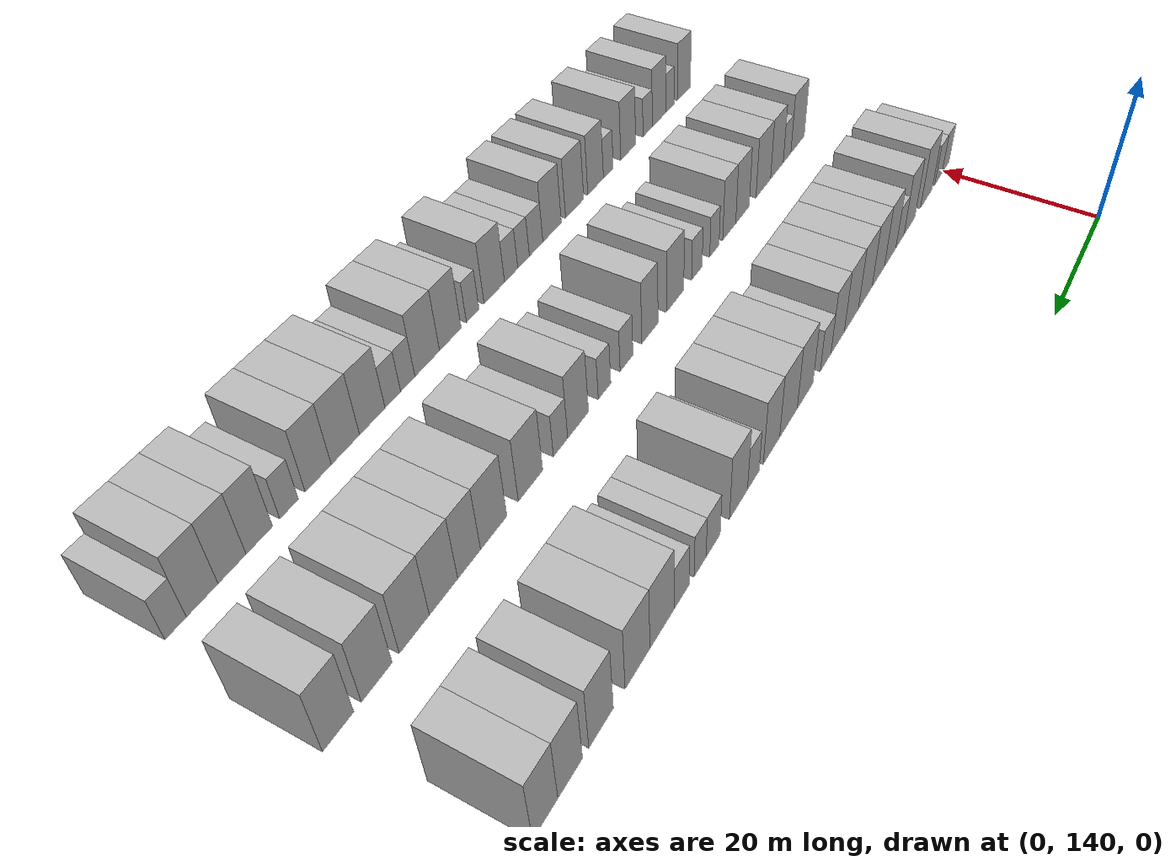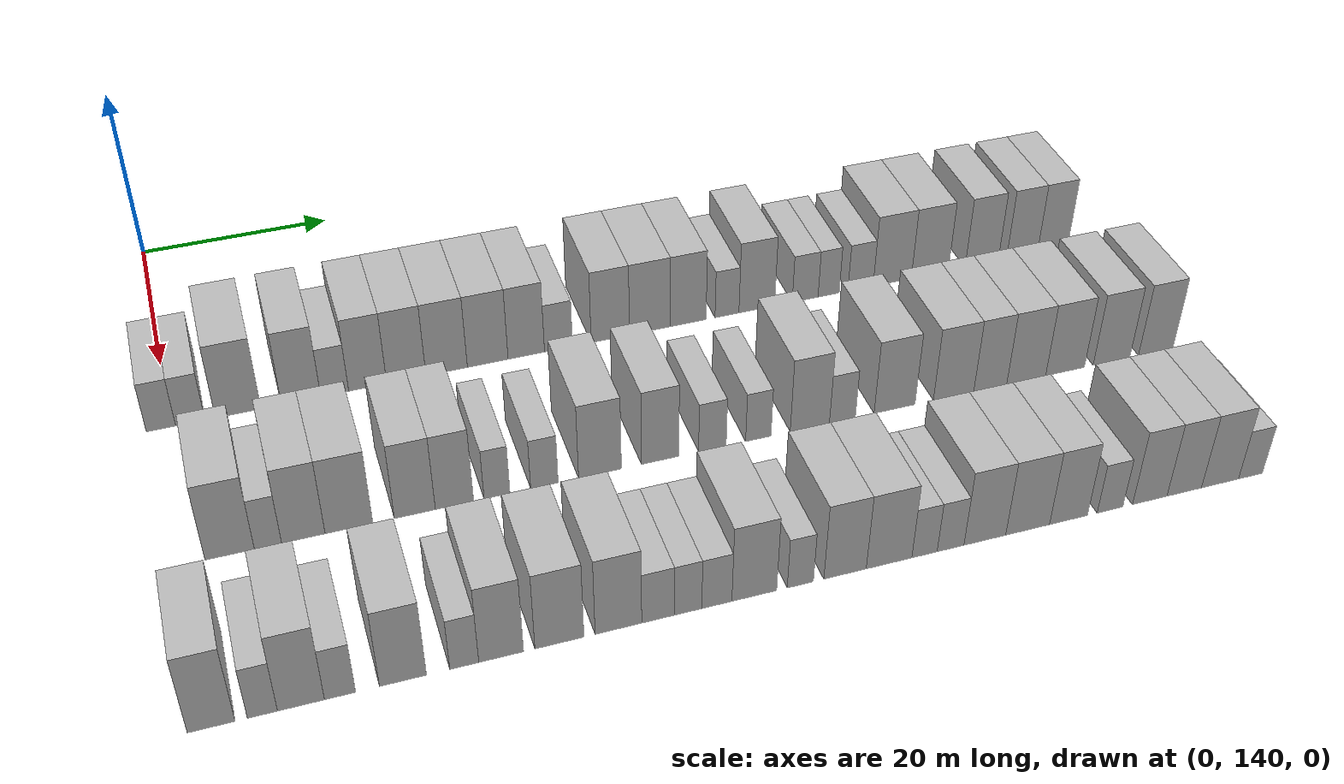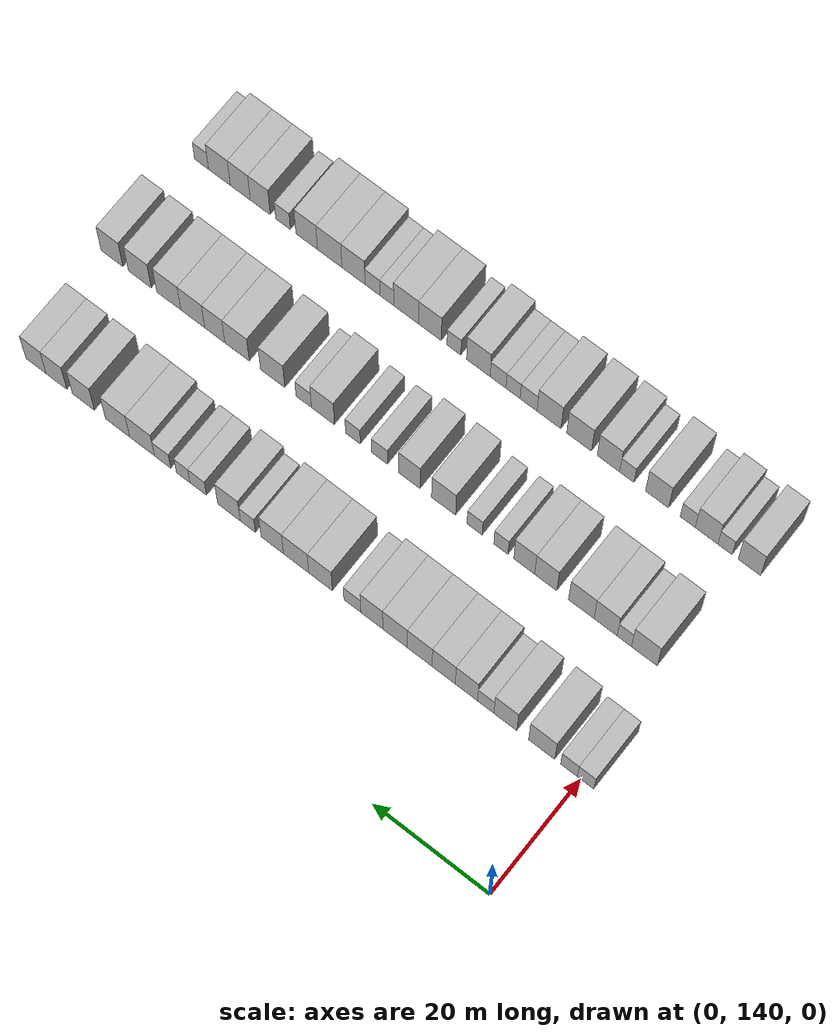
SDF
<sdf version="1.6">
 <world name="default">
  <model name="building_96">
   <static>1</static>
   <pose>25.0000 139.1685 0 0.000000 0.000000 0.000000</pose>
   <link name="link">
    <pose>0 0 3.00 0 0 0</pose>
    <collision name="collision"><geometry><box><size>10.0000 2.8080 6.0000</size></box></geometry></collision>
    <visual name="visual">
     <cast_shadows>0</cast_shadows>
     <geometry><box><size>10.0000 2.8080 6.0000</size></box></geometry>
     <material>
      <script>
       <uri>model://HANNAS_wall/materials/scripts</uri>
       <uri>model://HANNAS_wall/materials/textures</uri>
       <name>vrc/HANNAS_wall</name>
      </script>
     </material>
    </visual>
   </link>
  </model>
  <model name="building_97">
   <static>1</static>
   <pose>25.0000 141.9896 0 0.000000 0.000000 0.000000</pose>
   <link name="link">
    <pose>0 0 3.00 0 0 0</pose>
    <collision name="collision"><geometry><box><size>10.0000 2.8341 6.0000</size></box></geometry></collision>
    <visual name="visual">
     <cast_shadows>0</cast_shadows>
     <geometry><box><size>10.0000 2.8341 6.0000</size></box></geometry>
     <material>
      <script>
       <uri>model://HANNAS_wall/materials/scripts</uri>
       <uri>model://HANNAS_wall/materials/textures</uri>
       <name>vrc/HANNAS_wall</name>
      </script>
     </material>
    </visual>
   </link>
  </model>
  <model name="building_98">
   <static>1</static>
   <pose>25.0000 146.6358 0 0.000000 0.000000 0.000000</pose>
   <link name="link">
    <pose>0 0 4.50 0 0 0</pose>
    <collision name="collision"><geometry><box><size>10.0000 4.4584 9.0000</size></box></geometry></collision>
    <visual name="visual">
     <cast_shadows>0</cast_shadows>
     <geometry><box><size>10.0000 4.4584 9.0000</size></box></geometry>
     <material>
      <script>
       <uri>model://HANNAS_wall/materials/scripts</uri>
       <uri>model://HANNAS_wall/materials/textures</uri>
       <name>vrc/HANNAS_wall</name>
      </script>
     </material>
    </visual>
   </link>
  </model>
  <model name="building_99">
   <static>1</static>
   <pose>25.0000 152.8240 0 0.000000 0.000000 0.000000</pose>
   <link name="link">
    <pose>0 0 4.50 0 0 0</pose>
    <collision name="collision"><geometry><box><size>10.0000 3.9180 9.0000</size></box></geometry></collision>
    <visual name="visual">
     <cast_shadows>0</cast_shadows>
     <geometry><box><size>10.0000 3.9180 9.0000</size></box></geometry>
     <material>
      <script>
       <uri>model://HANNAS_wall/materials/scripts</uri>
       <uri>model://HANNAS_wall/materials/textures</uri>
       <name>vrc/HANNAS_wall</name>
      </script>
     </material>
    </visual>
   </link>
  </model>
  <model name="building_100">
   <static>1</static>
   <pose>25.0000 156.1838 0 0.000000 0.000000 0.000000</pose>
   <link name="link">
    <pose>0 0 3.00 0 0 0</pose>
    <collision name="collision"><geometry><box><size>10.0000 2.8018 6.0000</size></box></geometry></collision>
    <visual name="visual">
     <cast_shadows>0</cast_shadows>
     <geometry><box><size>10.0000 2.8018 6.0000</size></box></geometry>
     <material>
      <script>
       <uri>model://HANNAS_wall/materials/scripts</uri>
       <uri>model://HANNAS_wall/materials/textures</uri>
       <name>vrc/HANNAS_wall</name>
      </script>
     </material>
    </visual>
   </link>
  </model>
  <model name="building_101">
   <static>1</static>
   <pose>25.0000 159.5062 0 0.000000 0.000000 0.000000</pose>
   <link name="link">
    <pose>0 0 4.50 0 0 0</pose>
    <collision name="collision"><geometry><box><size>10.0000 3.8430 9.0000</size></box></geometry></collision>
    <visual name="visual">
     <cast_shadows>0</cast_shadows>
     <geometry><box><size>10.0000 3.8430 9.0000</size></box></geometry>
     <material>
      <script>
       <uri>model://HANNAS_wall/materials/scripts</uri>
       <uri>model://HANNAS_wall/materials/textures</uri>
       <name>vrc/HANNAS_wall</name>
      </script>
     </material>
    </visual>
   </link>
  </model>
  <model name="building_102">
   <static>1</static>
   <pose>25.0000 163.4303 0 0.000000 0.000000 0.000000</pose>
   <link name="link">
    <pose>0 0 4.50 0 0 0</pose>
    <collision name="collision"><geometry><box><size>10.0000 4.0051 9.0000</size></box></geometry></collision>
    <visual name="visual">
     <cast_shadows>0</cast_shadows>
     <geometry><box><size>10.0000 4.0051 9.0000</size></box></geometry>
     <material>
      <script>
       <uri>model://HANNAS_wall/materials/scripts</uri>
       <uri>model://HANNAS_wall/materials/textures</uri>
       <name>vrc/HANNAS_wall</name>
      </script>
     </material>
    </visual>
   </link>
  </model>
  <model name="building_103">
   <static>1</static>
   <pose>25.0000 167.5746 0 0.000000 0.000000 0.000000</pose>
   <link name="link">
    <pose>0 0 4.50 0 0 0</pose>
    <collision name="collision"><geometry><box><size>10.0000 4.2836 9.0000</size></box></geometry></collision>
    <visual name="visual">
     <cast_shadows>0</cast_shadows>
     <geometry><box><size>10.0000 4.2836 9.0000</size></box></geometry>
     <material>
      <script>
       <uri>model://HANNAS_wall/materials/scripts</uri>
       <uri>model://HANNAS_wall/materials/textures</uri>
       <name>vrc/HANNAS_wall</name>
      </script>
     </material>
    </visual>
   </link>
  </model>
  <model name="building_104">
   <static>1</static>
   <pose>25.0000 171.8434 0 0.000000 0.000000 0.000000</pose>
   <link name="link">
    <pose>0 0 4.50 0 0 0</pose>
    <collision name="collision"><geometry><box><size>10.0000 4.2540 9.0000</size></box></geometry></collision>
    <visual name="visual">
     <cast_shadows>0</cast_shadows>
     <geometry><box><size>10.0000 4.2540 9.0000</size></box></geometry>
     <material>
      <script>
       <uri>model://HANNAS_wall/materials/scripts</uri>
       <uri>model://HANNAS_wall/materials/textures</uri>
       <name>vrc/HANNAS_wall</name>
      </script>
     </material>
    </visual>
   </link>
  </model>
  <model name="building_105">
   <static>1</static>
   <pose>25.0000 175.8924 0 0.000000 0.000000 0.000000</pose>
   <link name="link">
    <pose>0 0 4.50 0 0 0</pose>
    <collision name="collision"><geometry><box><size>10.0000 3.8440 9.0000</size></box></geometry></collision>
    <visual name="visual">
     <cast_shadows>0</cast_shadows>
     <geometry><box><size>10.0000 3.8440 9.0000</size></box></geometry>
     <material>
      <script>
       <uri>model://HANNAS_wall/materials/scripts</uri>
       <uri>model://HANNAS_wall/materials/textures</uri>
       <name>vrc/HANNAS_wall</name>
      </script>
     </material>
    </visual>
   </link>
  </model>
  <model name="building_106">
   <static>1</static>
   <pose>25.0000 179.3023 0 0.000000 0.000000 0.000000</pose>
   <link name="link">
    <pose>0 0 3.00 0 0 0</pose>
    <collision name="collision"><geometry><box><size>10.0000 2.9758 6.0000</size></box></geometry></collision>
    <visual name="visual">
     <cast_shadows>0</cast_shadows>
     <geometry><box><size>10.0000 2.9758 6.0000</size></box></geometry>
     <material>
      <script>
       <uri>model://HANNAS_wall/materials/scripts</uri>
       <uri>model://HANNAS_wall/materials/textures</uri>
       <name>vrc/HANNAS_wall</name>
      </script>
     </material>
    </visual>
   </link>
  </model>
  <model name="building_107">
   <static>1</static>
   <pose>25.0000 184.8642 0 0.000000 0.000000 0.000000</pose>
   <link name="link">
    <pose>0 0 4.50 0 0 0</pose>
    <collision name="collision"><geometry><box><size>10.0000 4.1479 9.0000</size></box></geometry></collision>
    <visual name="visual">
     <cast_shadows>0</cast_shadows>
     <geometry><box><size>10.0000 4.1479 9.0000</size></box></geometry>
     <material>
      <script>
       <uri>model://HANNAS_wall/materials/scripts</uri>
       <uri>model://HANNAS_wall/materials/textures</uri>
       <name>vrc/HANNAS_wall</name>
      </script>
     </material>
    </visual>
   </link>
  </model>
  <model name="building_108">
   <static>1</static>
   <pose>25.0000 189.1659 0 0.000000 0.000000 0.000000</pose>
   <link name="link">
    <pose>0 0 4.50 0 0 0</pose>
    <collision name="collision"><geometry><box><size>10.0000 4.4556 9.0000</size></box></geometry></collision>
    <visual name="visual">
     <cast_shadows>0</cast_shadows>
     <geometry><box><size>10.0000 4.4556 9.0000</size></box></geometry>
     <material>
      <script>
       <uri>model://HANNAS_wall/materials/scripts</uri>
       <uri>model://HANNAS_wall/materials/textures</uri>
       <name>vrc/HANNAS_wall</name>
      </script>
     </material>
    </visual>
   </link>
  </model>
  <model name="building_109">
   <static>1</static>
   <pose>25.0000 193.3705 0 0.000000 0.000000 0.000000</pose>
   <link name="link">
    <pose>0 0 4.50 0 0 0</pose>
    <collision name="collision"><geometry><box><size>10.0000 3.9536 9.0000</size></box></geometry></collision>
    <visual name="visual">
     <cast_shadows>0</cast_shadows>
     <geometry><box><size>10.0000 3.9536 9.0000</size></box></geometry>
     <material>
      <script>
       <uri>model://HANNAS_wall/materials/scripts</uri>
       <uri>model://HANNAS_wall/materials/textures</uri>
       <name>vrc/HANNAS_wall</name>
      </script>
     </material>
    </visual>
   </link>
  </model>
  <model name="building_110">
   <static>1</static>
   <pose>25.0000 197.6807 0 0.000000 0.000000 0.000000</pose>
   <link name="link">
    <pose>0 0 3.00 0 0 0</pose>
    <collision name="collision"><geometry><box><size>10.0000 2.6667 6.0000</size></box></geometry></collision>
    <visual name="visual">
     <cast_shadows>0</cast_shadows>
     <geometry><box><size>10.0000 2.6667 6.0000</size></box></geometry>
     <material>
      <script>
       <uri>model://HANNAS_wall/materials/scripts</uri>
       <uri>model://HANNAS_wall/materials/textures</uri>
       <name>vrc/HANNAS_wall</name>
      </script>
     </material>
    </visual>
   </link>
  </model>
  <model name="building_111">
   <static>1</static>
   <pose>25.0000 201.0254 0 0.000000 0.000000 0.000000</pose>
   <link name="link">
    <pose>0 0 4.50 0 0 0</pose>
    <collision name="collision"><geometry><box><size>10.0000 4.0227 9.0000</size></box></geometry></collision>
    <visual name="visual">
     <cast_shadows>0</cast_shadows>
     <geometry><box><size>10.0000 4.0227 9.0000</size></box></geometry>
     <material>
      <script>
       <uri>model://HANNAS_wall/materials/scripts</uri>
       <uri>model://HANNAS_wall/materials/textures</uri>
       <name>vrc/HANNAS_wall</name>
      </script>
     </material>
    </visual>
   </link>
  </model>
  <model name="building_112">
   <static>1</static>
   <pose>25.0000 206.5128 0 0.000000 0.000000 0.000000</pose>
   <link name="link">
    <pose>0 0 3.00 0 0 0</pose>
    <collision name="collision"><geometry><box><size>10.0000 2.9521 6.0000</size></box></geometry></collision>
    <visual name="visual">
     <cast_shadows>0</cast_shadows>
     <geometry><box><size>10.0000 2.9521 6.0000</size></box></geometry>
     <material>
      <script>
       <uri>model://HANNAS_wall/materials/scripts</uri>
       <uri>model://HANNAS_wall/materials/textures</uri>
       <name>vrc/HANNAS_wall</name>
      </script>
     </material>
    </visual>
   </link>
  </model>
  <model name="building_113">
   <static>1</static>
   <pose>25.0000 209.2039 0 0.000000 0.000000 0.000000</pose>
   <link name="link">
    <pose>0 0 3.00 0 0 0</pose>
    <collision name="collision"><geometry><box><size>10.0000 2.4303 6.0000</size></box></geometry></collision>
    <visual name="visual">
     <cast_shadows>0</cast_shadows>
     <geometry><box><size>10.0000 2.4303 6.0000</size></box></geometry>
     <material>
      <script>
       <uri>model://HANNAS_wall/materials/scripts</uri>
       <uri>model://HANNAS_wall/materials/textures</uri>
       <name>vrc/HANNAS_wall</name>
      </script>
     </material>
    </visual>
   </link>
  </model>
  <model name="building_114">
   <static>1</static>
   <pose>25.0000 212.8825 0 0.000000 0.000000 0.000000</pose>
   <link name="link">
    <pose>0 0 3.00 0 0 0</pose>
    <collision name="collision"><geometry><box><size>10.0000 2.9269 6.0000</size></box></geometry></collision>
    <visual name="visual">
     <cast_shadows>0</cast_shadows>
     <geometry><box><size>10.0000 2.9269 6.0000</size></box></geometry>
     <material>
      <script>
       <uri>model://HANNAS_wall/materials/scripts</uri>
       <uri>model://HANNAS_wall/materials/textures</uri>
       <name>vrc/HANNAS_wall</name>
      </script>
     </material>
    </visual>
   </link>
  </model>
  <model name="building_115">
   <static>1</static>
   <pose>25.0000 216.5845 0 0.000000 0.000000 0.000000</pose>
   <link name="link">
    <pose>0 0 4.50 0 0 0</pose>
    <collision name="collision"><geometry><box><size>10.0000 4.4770 9.0000</size></box></geometry></collision>
    <visual name="visual">
     <cast_shadows>0</cast_shadows>
     <geometry><box><size>10.0000 4.4770 9.0000</size></box></geometry>
     <material>
      <script>
       <uri>model://HANNAS_wall/materials/scripts</uri>
       <uri>model://HANNAS_wall/materials/textures</uri>
       <name>vrc/HANNAS_wall</name>
      </script>
     </material>
    </visual>
   </link>
  </model>
  <model name="building_116">
   <static>1</static>
   <pose>25.0000 221.0130 0 0.000000 0.000000 0.000000</pose>
   <link name="link">
    <pose>0 0 4.50 0 0 0</pose>
    <collision name="collision"><geometry><box><size>10.0000 4.3802 9.0000</size></box></geometry></collision>
    <visual name="visual">
     <cast_shadows>0</cast_shadows>
     <geometry><box><size>10.0000 4.3802 9.0000</size></box></geometry>
     <material>
      <script>
       <uri>model://HANNAS_wall/materials/scripts</uri>
       <uri>model://HANNAS_wall/materials/textures</uri>
       <name>vrc/HANNAS_wall</name>
      </script>
     </material>
    </visual>
   </link>
  </model>
  <model name="building_117">
   <static>1</static>
   <pose>25.0000 227.1980 0 0.000000 0.000000 0.000000</pose>
   <link name="link">
    <pose>0 0 4.50 0 0 0</pose>
    <collision name="collision"><geometry><box><size>10.0000 3.9897 9.0000</size></box></geometry></collision>
    <visual name="visual">
     <cast_shadows>0</cast_shadows>
     <geometry><box><size>10.0000 3.9897 9.0000</size></box></geometry>
     <material>
      <script>
       <uri>model://HANNAS_wall/materials/scripts</uri>
       <uri>model://HANNAS_wall/materials/textures</uri>
       <name>vrc/HANNAS_wall</name>
      </script>
     </material>
    </visual>
   </link>
  </model>
  <model name="building_118">
   <static>1</static>
   <pose>25.0000 232.0736 0 0.000000 0.000000 0.000000</pose>
   <link name="link">
    <pose>0 0 4.50 0 0 0</pose>
    <collision name="collision"><geometry><box><size>10.0000 3.7614 9.0000</size></box></geometry></collision>
    <visual name="visual">
     <cast_shadows>0</cast_shadows>
     <geometry><box><size>10.0000 3.7614 9.0000</size></box></geometry>
     <material>
      <script>
       <uri>model://HANNAS_wall/materials/scripts</uri>
       <uri>model://HANNAS_wall/materials/textures</uri>
       <name>vrc/HANNAS_wall</name>
      </script>
     </material>
    </visual>
   </link>
  </model>
  <model name="building_119">
   <static>1</static>
   <pose>25.0000 235.8036 0 0.000000 0.000000 0.000000</pose>
   <link name="link">
    <pose>0 0 4.50 0 0 0</pose>
    <collision name="collision"><geometry><box><size>10.0000 3.6988 9.0000</size></box></geometry></collision>
    <visual name="visual">
     <cast_shadows>0</cast_shadows>
     <geometry><box><size>10.0000 3.6988 9.0000</size></box></geometry>
     <material>
      <script>
       <uri>model://HANNAS_wall/materials/scripts</uri>
       <uri>model://HANNAS_wall/materials/textures</uri>
       <name>vrc/HANNAS_wall</name>
      </script>
     </material>
    </visual>
   </link>
  </model>
  <model name="building_219">
   <static>1</static>
   <pose>44.0000 143.5292 0 0.000000 0.000000 0.000000</pose>
   <link name="link">
    <pose>0 0 4.50 0 0 0</pose>
    <collision name="collision"><geometry><box><size>10.0000 4.4046 9.0000</size></box></geometry></collision>
    <visual name="visual">
     <cast_shadows>0</cast_shadows>
     <geometry><box><size>10.0000 4.4046 9.0000</size></box></geometry>
     <material>
      <script>
       <uri>model://HANNAS_wall/materials/scripts</uri>
       <uri>model://HANNAS_wall/materials/textures</uri>
       <name>vrc/HANNAS_wall</name>
      </script>
     </material>
    </visual>
   </link>
  </model>
  <model name="building_220">
   <static>1</static>
   <pose>44.0000 146.9605 0 0.000000 0.000000 0.000000</pose>
   <link name="link">
    <pose>0 0 3.00 0 0 0</pose>
    <collision name="collision"><geometry><box><size>10.0000 2.4580 6.0000</size></box></geometry></collision>
    <visual name="visual">
     <cast_shadows>0</cast_shadows>
     <geometry><box><size>10.0000 2.4580 6.0000</size></box></geometry>
     <material>
      <script>
       <uri>model://HANNAS_wall/materials/scripts</uri>
       <uri>model://HANNAS_wall/materials/textures</uri>
       <name>vrc/HANNAS_wall</name>
      </script>
     </material>
    </visual>
   </link>
  </model>
  <model name="building_221">
   <static>1</static>
   <pose>44.0000 150.1693 0 0.000000 0.000000 0.000000</pose>
   <link name="link">
    <pose>0 0 4.50 0 0 0</pose>
    <collision name="collision"><geometry><box><size>10.0000 3.9597 9.0000</size></box></geometry></collision>
    <visual name="visual">
     <cast_shadows>0</cast_shadows>
     <geometry><box><size>10.0000 3.9597 9.0000</size></box></geometry>
     <material>
      <script>
       <uri>model://HANNAS_wall/materials/scripts</uri>
       <uri>model://HANNAS_wall/materials/textures</uri>
       <name>vrc/HANNAS_wall</name>
      </script>
     </material>
    </visual>
   </link>
  </model>
  <model name="building_222">
   <static>1</static>
   <pose>44.0000 154.3475 0 0.000000 0.000000 0.000000</pose>
   <link name="link">
    <pose>0 0 4.50 0 0 0</pose>
    <collision name="collision"><geometry><box><size>10.0000 4.3965 9.0000</size></box></geometry></collision>
    <visual name="visual">
     <cast_shadows>0</cast_shadows>
     <geometry><box><size>10.0000 4.3965 9.0000</size></box></geometry>
     <material>
      <script>
       <uri>model://HANNAS_wall/materials/scripts</uri>
       <uri>model://HANNAS_wall/materials/textures</uri>
       <name>vrc/HANNAS_wall</name>
      </script>
     </material>
    </visual>
   </link>
  </model>
  <model name="building_223">
   <static>1</static>
   <pose>44.0000 160.4676 0 0.000000 0.000000 0.000000</pose>
   <link name="link">
    <pose>0 0 4.50 0 0 0</pose>
    <collision name="collision"><geometry><box><size>10.0000 3.8438 9.0000</size></box></geometry></collision>
    <visual name="visual">
     <cast_shadows>0</cast_shadows>
     <geometry><box><size>10.0000 3.8438 9.0000</size></box></geometry>
     <material>
      <script>
       <uri>model://HANNAS_wall/materials/scripts</uri>
       <uri>model://HANNAS_wall/materials/textures</uri>
       <name>vrc/HANNAS_wall</name>
      </script>
     </material>
    </visual>
   </link>
  </model>
  <model name="building_224">
   <static>1</static>
   <pose>44.0000 164.2001 0 0.000000 0.000000 0.000000</pose>
   <link name="link">
    <pose>0 0 4.50 0 0 0</pose>
    <collision name="collision"><geometry><box><size>10.0000 3.6212 9.0000</size></box></geometry></collision>
    <visual name="visual">
     <cast_shadows>0</cast_shadows>
     <geometry><box><size>10.0000 3.6212 9.0000</size></box></geometry>
     <material>
      <script>
       <uri>model://HANNAS_wall/materials/scripts</uri>
       <uri>model://HANNAS_wall/materials/textures</uri>
       <name>vrc/HANNAS_wall</name>
      </script>
     </material>
    </visual>
   </link>
  </model>
  <model name="building_225">
   <static>1</static>
   <pose>44.0000 168.2510 0 0.000000 0.000000 0.000000</pose>
   <link name="link">
    <pose>0 0 3.00 0 0 0</pose>
    <collision name="collision"><geometry><box><size>10.0000 2.4804 6.0000</size></box></geometry></collision>
    <visual name="visual">
     <cast_shadows>0</cast_shadows>
     <geometry><box><size>10.0000 2.4804 6.0000</size></box></geometry>
     <material>
      <script>
       <uri>model://HANNAS_wall/materials/scripts</uri>
       <uri>model://HANNAS_wall/materials/textures</uri>
       <name>vrc/HANNAS_wall</name>
      </script>
     </material>
    </visual>
   </link>
  </model>
  <model name="building_226">
   <static>1</static>
   <pose>44.0000 172.8241 0 0.000000 0.000000 0.000000</pose>
   <link name="link">
    <pose>0 0 3.00 0 0 0</pose>
    <collision name="collision"><geometry><box><size>10.0000 2.6658 6.0000</size></box></geometry></collision>
    <visual name="visual">
     <cast_shadows>0</cast_shadows>
     <geometry><box><size>10.0000 2.6658 6.0000</size></box></geometry>
     <material>
      <script>
       <uri>model://HANNAS_wall/materials/scripts</uri>
       <uri>model://HANNAS_wall/materials/textures</uri>
       <name>vrc/HANNAS_wall</name>
      </script>
     </material>
    </visual>
   </link>
  </model>
  <model name="building_227">
   <static>1</static>
   <pose>44.0000 178.2673 0 0.000000 0.000000 0.000000</pose>
   <link name="link">
    <pose>0 0 4.50 0 0 0</pose>
    <collision name="collision"><geometry><box><size>10.0000 4.2207 9.0000</size></box></geometry></collision>
    <visual name="visual">
     <cast_shadows>0</cast_shadows>
     <geometry><box><size>10.0000 4.2207 9.0000</size></box></geometry>
     <material>
      <script>
       <uri>model://HANNAS_wall/materials/scripts</uri>
       <uri>model://HANNAS_wall/materials/textures</uri>
       <name>vrc/HANNAS_wall</name>
      </script>
     </material>
    </visual>
   </link>
  </model>
  <model name="building_228">
   <static>1</static>
   <pose>44.0000 184.2509 0 0.000000 0.000000 0.000000</pose>
   <link name="link">
    <pose>0 0 4.50 0 0 0</pose>
    <collision name="collision"><geometry><box><size>10.0000 3.7465 9.0000</size></box></geometry></collision>
    <visual name="visual">
     <cast_shadows>0</cast_shadows>
     <geometry><box><size>10.0000 3.7465 9.0000</size></box></geometry>
     <material>
      <script>
       <uri>model://HANNAS_wall/materials/scripts</uri>
       <uri>model://HANNAS_wall/materials/textures</uri>
       <name>vrc/HANNAS_wall</name>
      </script>
     </material>
    </visual>
   </link>
  </model>
  <model name="building_229">
   <static>1</static>
   <pose>44.0000 189.5262 0 0.000000 0.000000 0.000000</pose>
   <link name="link">
    <pose>0 0 3.00 0 0 0</pose>
    <collision name="collision"><geometry><box><size>10.0000 2.8040 6.0000</size></box></geometry></collision>
    <visual name="visual">
     <cast_shadows>0</cast_shadows>
     <geometry><box><size>10.0000 2.8040 6.0000</size></box></geometry>
     <material>
      <script>
       <uri>model://HANNAS_wall/materials/scripts</uri>
       <uri>model://HANNAS_wall/materials/textures</uri>
       <name>vrc/HANNAS_wall</name>
      </script>
     </material>
    </visual>
   </link>
  </model>
  <model name="building_230">
   <static>1</static>
   <pose>44.0000 194.2354 0 0.000000 0.000000 0.000000</pose>
   <link name="link">
    <pose>0 0 3.00 0 0 0</pose>
    <collision name="collision"><geometry><box><size>10.0000 2.6144 6.0000</size></box></geometry></collision>
    <visual name="visual">
     <cast_shadows>0</cast_shadows>
     <geometry><box><size>10.0000 2.6144 6.0000</size></box></geometry>
     <material>
      <script>
       <uri>model://HANNAS_wall/materials/scripts</uri>
       <uri>model://HANNAS_wall/materials/textures</uri>
       <name>vrc/HANNAS_wall</name>
      </script>
     </material>
    </visual>
   </link>
  </model>
  <model name="building_231">
   <static>1</static>
   <pose>44.0000 199.5970 0 0.000000 0.000000 0.000000</pose>
   <link name="link">
    <pose>0 0 4.50 0 0 0</pose>
    <collision name="collision"><geometry><box><size>10.0000 4.1090 9.0000</size></box></geometry></collision>
    <visual name="visual">
     <cast_shadows>0</cast_shadows>
     <geometry><box><size>10.0000 4.1090 9.0000</size></box></geometry>
     <material>
      <script>
       <uri>model://HANNAS_wall/materials/scripts</uri>
       <uri>model://HANNAS_wall/materials/textures</uri>
       <name>vrc/HANNAS_wall</name>
      </script>
     </material>
    </visual>
   </link>
  </model>
  <model name="building_232">
   <static>1</static>
   <pose>44.0000 203.0188 0 0.000000 0.000000 0.000000</pose>
   <link name="link">
    <pose>0 0 3.00 0 0 0</pose>
    <collision name="collision"><geometry><box><size>10.0000 2.7346 6.0000</size></box></geometry></collision>
    <visual name="visual">
     <cast_shadows>0</cast_shadows>
     <geometry><box><size>10.0000 2.7346 6.0000</size></box></geometry>
     <material>
      <script>
       <uri>model://HANNAS_wall/materials/scripts</uri>
       <uri>model://HANNAS_wall/materials/textures</uri>
       <name>vrc/HANNAS_wall</name>
      </script>
     </material>
    </visual>
   </link>
  </model>
  <model name="building_233">
   <static>1</static>
   <pose>44.0000 208.5767 0 0.000000 0.000000 0.000000</pose>
   <link name="link">
    <pose>0 0 4.50 0 0 0</pose>
    <collision name="collision"><geometry><box><size>10.0000 4.3812 9.0000</size></box></geometry></collision>
    <visual name="visual">
     <cast_shadows>0</cast_shadows>
     <geometry><box><size>10.0000 4.3812 9.0000</size></box></geometry>
     <material>
      <script>
       <uri>model://HANNAS_wall/materials/scripts</uri>
       <uri>model://HANNAS_wall/materials/textures</uri>
       <name>vrc/HANNAS_wall</name>
      </script>
     </material>
    </visual>
   </link>
  </model>
  <model name="building_234">
   <static>1</static>
   <pose>44.0000 214.9715 0 0.000000 0.000000 0.000000</pose>
   <link name="link">
    <pose>0 0 4.50 0 0 0</pose>
    <collision name="collision"><geometry><box><size>10.0000 4.4084 9.0000</size></box></geometry></collision>
    <visual name="visual">
     <cast_shadows>0</cast_shadows>
     <geometry><box><size>10.0000 4.4084 9.0000</size></box></geometry>
     <material>
      <script>
       <uri>model://HANNAS_wall/materials/scripts</uri>
       <uri>model://HANNAS_wall/materials/textures</uri>
       <name>vrc/HANNAS_wall</name>
      </script>
     </material>
    </visual>
   </link>
  </model>
  <model name="building_235">
   <static>1</static>
   <pose>44.0000 218.9979 0 0.000000 0.000000 0.000000</pose>
   <link name="link">
    <pose>0 0 4.50 0 0 0</pose>
    <collision name="collision"><geometry><box><size>10.0000 3.6444 9.0000</size></box></geometry></collision>
    <visual name="visual">
     <cast_shadows>0</cast_shadows>
     <geometry><box><size>10.0000 3.6444 9.0000</size></box></geometry>
     <material>
      <script>
       <uri>model://HANNAS_wall/materials/scripts</uri>
       <uri>model://HANNAS_wall/materials/textures</uri>
       <name>vrc/HANNAS_wall</name>
      </script>
     </material>
    </visual>
   </link>
  </model>
  <model name="building_236">
   <static>1</static>
   <pose>44.0000 222.9902 0 0.000000 0.000000 0.000000</pose>
   <link name="link">
    <pose>0 0 4.50 0 0 0</pose>
    <collision name="collision"><geometry><box><size>10.0000 4.3402 9.0000</size></box></geometry></collision>
    <visual name="visual">
     <cast_shadows>0</cast_shadows>
     <geometry><box><size>10.0000 4.3402 9.0000</size></box></geometry>
     <material>
      <script>
       <uri>model://HANNAS_wall/materials/scripts</uri>
       <uri>model://HANNAS_wall/materials/textures</uri>
       <name>vrc/HANNAS_wall</name>
      </script>
     </material>
    </visual>
   </link>
  </model>
  <model name="building_237">
   <static>1</static>
   <pose>44.0000 227.3459 0 0.000000 0.000000 0.000000</pose>
   <link name="link">
    <pose>0 0 4.50 0 0 0</pose>
    <collision name="collision"><geometry><box><size>10.0000 4.3712 9.0000</size></box></geometry></collision>
    <visual name="visual">
     <cast_shadows>0</cast_shadows>
     <geometry><box><size>10.0000 4.3712 9.0000</size></box></geometry>
     <material>
      <script>
       <uri>model://HANNAS_wall/materials/scripts</uri>
       <uri>model://HANNAS_wall/materials/textures</uri>
       <name>vrc/HANNAS_wall</name>
      </script>
     </material>
    </visual>
   </link>
  </model>
  <model name="building_238">
   <static>1</static>
   <pose>44.0000 232.6284 0 0.000000 0.000000 0.000000</pose>
   <link name="link">
    <pose>0 0 4.50 0 0 0</pose>
    <collision name="collision"><geometry><box><size>10.0000 4.1938 9.0000</size></box></geometry></collision>
    <visual name="visual">
     <cast_shadows>0</cast_shadows>
     <geometry><box><size>10.0000 4.1938 9.0000</size></box></geometry>
     <material>
      <script>
       <uri>model://HANNAS_wall/materials/scripts</uri>
       <uri>model://HANNAS_wall/materials/textures</uri>
       <name>vrc/HANNAS_wall</name>
      </script>
     </material>
    </visual>
   </link>
  </model>
  <model name="building_239">
   <static>1</static>
   <pose>44.0000 237.7178 0 0.000000 0.000000 0.000000</pose>
   <link name="link">
    <pose>0 0 4.50 0 0 0</pose>
    <collision name="collision"><geometry><box><size>10.0000 3.9850 9.0000</size></box></geometry></collision>
    <visual name="visual">
     <cast_shadows>0</cast_shadows>
     <geometry><box><size>10.0000 3.9850 9.0000</size></box></geometry>
     <material>
      <script>
       <uri>model://HANNAS_wall/materials/scripts</uri>
       <uri>model://HANNAS_wall/materials/textures</uri>
       <name>vrc/HANNAS_wall</name>
      </script>
     </material>
    </visual>
   </link>
  </model>
  <model name="building_332">
   <static>1</static>
   <pose>63.0000 139.7670 0 0.000000 0.000000 0.000000</pose>
   <link name="link">
    <pose>0 0 4.50 0 0 0</pose>
    <collision name="collision"><geometry><box><size>10.0000 3.8516 9.0000</size></box></geometry></collision>
    <visual name="visual">
     <cast_shadows>0</cast_shadows>
     <geometry><box><size>10.0000 3.8516 9.0000</size></box></geometry>
     <material>
      <script>
       <uri>model://HANNAS_wall/materials/scripts</uri>
       <uri>model://HANNAS_wall/materials/textures</uri>
       <name>vrc/HANNAS_wall</name>
      </script>
     </material>
    </visual>
   </link>
  </model>
  <model name="building_333">
   <static>1</static>
   <pose>63.0000 143.9232 0 0.000000 0.000000 0.000000</pose>
   <link name="link">
    <pose>0 0 3.00 0 0 0</pose>
    <collision name="collision"><geometry><box><size>10.0000 2.4608 6.0000</size></box></geometry></collision>
    <visual name="visual">
     <cast_shadows>0</cast_shadows>
     <geometry><box><size>10.0000 2.4608 6.0000</size></box></geometry>
     <material>
      <script>
       <uri>model://HANNAS_wall/materials/scripts</uri>
       <uri>model://HANNAS_wall/materials/textures</uri>
       <name>vrc/HANNAS_wall</name>
      </script>
     </material>
    </visual>
   </link>
  </model>
  <model name="building_334">
   <static>1</static>
   <pose>63.0000 147.0929 0 0.000000 0.000000 0.000000</pose>
   <link name="link">
    <pose>0 0 4.50 0 0 0</pose>
    <collision name="collision"><geometry><box><size>10.0000 3.8786 9.0000</size></box></geometry></collision>
    <visual name="visual">
     <cast_shadows>0</cast_shadows>
     <geometry><box><size>10.0000 3.8786 9.0000</size></box></geometry>
     <material>
      <script>
       <uri>model://HANNAS_wall/materials/scripts</uri>
       <uri>model://HANNAS_wall/materials/textures</uri>
       <name>vrc/HANNAS_wall</name>
      </script>
     </material>
    </visual>
   </link>
  </model>
  <model name="building_335">
   <static>1</static>
   <pose>63.0000 150.3293 0 0.000000 0.000000 0.000000</pose>
   <link name="link">
    <pose>0 0 3.00 0 0 0</pose>
    <collision name="collision"><geometry><box><size>10.0000 2.5942 6.0000</size></box></geometry></collision>
    <visual name="visual">
     <cast_shadows>0</cast_shadows>
     <geometry><box><size>10.0000 2.5942 6.0000</size></box></geometry>
     <material>
      <script>
       <uri>model://HANNAS_wall/materials/scripts</uri>
       <uri>model://HANNAS_wall/materials/textures</uri>
       <name>vrc/HANNAS_wall</name>
      </script>
     </material>
    </visual>
   </link>
  </model>
  <model name="building_336">
   <static>1</static>
   <pose>63.0000 155.6208 0 0.000000 0.000000 0.000000</pose>
   <link name="link">
    <pose>0 0 4.50 0 0 0</pose>
    <collision name="collision"><geometry><box><size>10.0000 3.9887 9.0000</size></box></geometry></collision>
    <visual name="visual">
     <cast_shadows>0</cast_shadows>
     <geometry><box><size>10.0000 3.9887 9.0000</size></box></geometry>
     <material>
      <script>
       <uri>model://HANNAS_wall/materials/scripts</uri>
       <uri>model://HANNAS_wall/materials/textures</uri>
       <name>vrc/HANNAS_wall</name>
      </script>
     </material>
    </visual>
   </link>
  </model>
  <model name="building_337">
   <static>1</static>
   <pose>63.0000 160.8636 0 0.000000 0.000000 0.000000</pose>
   <link name="link">
    <pose>0 0 3.00 0 0 0</pose>
    <collision name="collision"><geometry><box><size>10.0000 2.4970 6.0000</size></box></geometry></collision>
    <visual name="visual">
     <cast_shadows>0</cast_shadows>
     <geometry><box><size>10.0000 2.4970 6.0000</size></box></geometry>
     <material>
      <script>
       <uri>model://HANNAS_wall/materials/scripts</uri>
       <uri>model://HANNAS_wall/materials/textures</uri>
       <name>vrc/HANNAS_wall</name>
      </script>
     </material>
    </visual>
   </link>
  </model>
  <model name="building_338">
   <static>1</static>
   <pose>63.0000 164.0601 0 0.000000 0.000000 0.000000</pose>
   <link name="link">
    <pose>0 0 4.50 0 0 0</pose>
    <collision name="collision"><geometry><box><size>10.0000 3.8960 9.0000</size></box></geometry></collision>
    <visual name="visual">
     <cast_shadows>0</cast_shadows>
     <geometry><box><size>10.0000 3.8960 9.0000</size></box></geometry>
     <material>
      <script>
       <uri>model://HANNAS_wall/materials/scripts</uri>
       <uri>model://HANNAS_wall/materials/textures</uri>
       <name>vrc/HANNAS_wall</name>
      </script>
     </material>
    </visual>
   </link>
  </model>
  <model name="building_339">
   <static>1</static>
   <pose>63.0000 169.1765 0 0.000000 0.000000 0.000000</pose>
   <link name="link">
    <pose>0 0 4.50 0 0 0</pose>
    <collision name="collision"><geometry><box><size>10.0000 4.3366 9.0000</size></box></geometry></collision>
    <visual name="visual">
     <cast_shadows>0</cast_shadows>
     <geometry><box><size>10.0000 4.3366 9.0000</size></box></geometry>
     <material>
      <script>
       <uri>model://HANNAS_wall/materials/scripts</uri>
       <uri>model://HANNAS_wall/materials/textures</uri>
       <name>vrc/HANNAS_wall</name>
      </script>
     </material>
    </visual>
   </link>
  </model>
  <model name="building_340">
   <static>1</static>
   <pose>63.0000 174.4430 0 0.000000 0.000000 0.000000</pose>
   <link name="link">
    <pose>0 0 4.50 0 0 0</pose>
    <collision name="collision"><geometry><box><size>10.0000 4.1964 9.0000</size></box></geometry></collision>
    <visual name="visual">
     <cast_shadows>0</cast_shadows>
     <geometry><box><size>10.0000 4.1964 9.0000</size></box></geometry>
     <material>
      <script>
       <uri>model://HANNAS_wall/materials/scripts</uri>
       <uri>model://HANNAS_wall/materials/textures</uri>
       <name>vrc/HANNAS_wall</name>
      </script>
     </material>
    </visual>
   </link>
  </model>
  <model name="building_341">
   <static>1</static>
   <pose>63.0000 178.0288 0 0.000000 0.000000 0.000000</pose>
   <link name="link">
    <pose>0 0 3.00 0 0 0</pose>
    <collision name="collision"><geometry><box><size>10.0000 2.9754 6.0000</size></box></geometry></collision>
    <visual name="visual">
     <cast_shadows>0</cast_shadows>
     <geometry><box><size>10.0000 2.9754 6.0000</size></box></geometry>
     <material>
      <script>
       <uri>model://HANNAS_wall/materials/scripts</uri>
       <uri>model://HANNAS_wall/materials/textures</uri>
       <name>vrc/HANNAS_wall</name>
      </script>
     </material>
    </visual>
   </link>
  </model>
  <model name="building_342">
   <static>1</static>
   <pose>63.0000 180.7701 0 0.000000 0.000000 0.000000</pose>
   <link name="link">
    <pose>0 0 3.00 0 0 0</pose>
    <collision name="collision"><geometry><box><size>10.0000 2.5071 6.0000</size></box></geometry></collision>
    <visual name="visual">
     <cast_shadows>0</cast_shadows>
     <geometry><box><size>10.0000 2.5071 6.0000</size></box></geometry>
     <material>
      <script>
       <uri>model://HANNAS_wall/materials/scripts</uri>
       <uri>model://HANNAS_wall/materials/textures</uri>
       <name>vrc/HANNAS_wall</name>
      </script>
     </material>
    </visual>
   </link>
  </model>
  <model name="building_343">
   <static>1</static>
   <pose>63.0000 183.4162 0 0.000000 0.000000 0.000000</pose>
   <link name="link">
    <pose>0 0 3.00 0 0 0</pose>
    <collision name="collision"><geometry><box><size>10.0000 2.7852 6.0000</size></box></geometry></collision>
    <visual name="visual">
     <cast_shadows>0</cast_shadows>
     <geometry><box><size>10.0000 2.7852 6.0000</size></box></geometry>
     <material>
      <script>
       <uri>model://HANNAS_wall/materials/scripts</uri>
       <uri>model://HANNAS_wall/materials/textures</uri>
       <name>vrc/HANNAS_wall</name>
      </script>
     </material>
    </visual>
   </link>
  </model>
  <model name="building_344">
   <static>1</static>
   <pose>63.0000 186.9040 0 0.000000 0.000000 0.000000</pose>
   <link name="link">
    <pose>0 0 4.50 0 0 0</pose>
    <collision name="collision"><geometry><box><size>10.0000 4.1905 9.0000</size></box></geometry></collision>
    <visual name="visual">
     <cast_shadows>0</cast_shadows>
     <geometry><box><size>10.0000 4.1905 9.0000</size></box></geometry>
     <material>
      <script>
       <uri>model://HANNAS_wall/materials/scripts</uri>
       <uri>model://HANNAS_wall/materials/textures</uri>
       <name>vrc/HANNAS_wall</name>
      </script>
     </material>
    </visual>
   </link>
  </model>
  <model name="building_345">
   <static>1</static>
   <pose>63.0000 191.2353 0 0.000000 0.000000 0.000000</pose>
   <link name="link">
    <pose>0 0 3.00 0 0 0</pose>
    <collision name="collision"><geometry><box><size>10.0000 2.4720 6.0000</size></box></geometry></collision>
    <visual name="visual">
     <cast_shadows>0</cast_shadows>
     <geometry><box><size>10.0000 2.4720 6.0000</size></box></geometry>
     <material>
      <script>
       <uri>model://HANNAS_wall/materials/scripts</uri>
       <uri>model://HANNAS_wall/materials/textures</uri>
       <name>vrc/HANNAS_wall</name>
      </script>
     </material>
    </visual>
   </link>
  </model>
  <model name="building_346">
   <static>1</static>
   <pose>63.0000 195.5078 0 0.000000 0.000000 0.000000</pose>
   <link name="link">
    <pose>0 0 4.50 0 0 0</pose>
    <collision name="collision"><geometry><box><size>10.0000 4.0731 9.0000</size></box></geometry></collision>
    <visual name="visual">
     <cast_shadows>0</cast_shadows>
     <geometry><box><size>10.0000 4.0731 9.0000</size></box></geometry>
     <material>
      <script>
       <uri>model://HANNAS_wall/materials/scripts</uri>
       <uri>model://HANNAS_wall/materials/textures</uri>
       <name>vrc/HANNAS_wall</name>
      </script>
     </material>
    </visual>
   </link>
  </model>
  <model name="building_347">
   <static>1</static>
   <pose>63.0000 199.7609 0 0.000000 0.000000 0.000000</pose>
   <link name="link">
    <pose>0 0 4.50 0 0 0</pose>
    <collision name="collision"><geometry><box><size>10.0000 4.4329 9.0000</size></box></geometry></collision>
    <visual name="visual">
     <cast_shadows>0</cast_shadows>
     <geometry><box><size>10.0000 4.4329 9.0000</size></box></geometry>
     <material>
      <script>
       <uri>model://HANNAS_wall/materials/scripts</uri>
       <uri>model://HANNAS_wall/materials/textures</uri>
       <name>vrc/HANNAS_wall</name>
      </script>
     </material>
    </visual>
   </link>
  </model>
  <model name="building_348">
   <static>1</static>
   <pose>63.0000 203.2202 0 0.000000 0.000000 0.000000</pose>
   <link name="link">
    <pose>0 0 3.00 0 0 0</pose>
    <collision name="collision"><geometry><box><size>10.0000 2.4858 6.0000</size></box></geometry></collision>
    <visual name="visual">
     <cast_shadows>0</cast_shadows>
     <geometry><box><size>10.0000 2.4858 6.0000</size></box></geometry>
     <material>
      <script>
       <uri>model://HANNAS_wall/materials/scripts</uri>
       <uri>model://HANNAS_wall/materials/textures</uri>
       <name>vrc/HANNAS_wall</name>
      </script>
     </material>
    </visual>
   </link>
  </model>
  <model name="building_349">
   <static>1</static>
   <pose>63.0000 205.7888 0 0.000000 0.000000 0.000000</pose>
   <link name="link">
    <pose>0 0 3.00 0 0 0</pose>
    <collision name="collision"><geometry><box><size>10.0000 2.6513 6.0000</size></box></geometry></collision>
    <visual name="visual">
     <cast_shadows>0</cast_shadows>
     <geometry><box><size>10.0000 2.6513 6.0000</size></box></geometry>
     <material>
      <script>
       <uri>model://HANNAS_wall/materials/scripts</uri>
       <uri>model://HANNAS_wall/materials/textures</uri>
       <name>vrc/HANNAS_wall</name>
      </script>
     </material>
    </visual>
   </link>
  </model>
  <model name="building_350">
   <static>1</static>
   <pose>63.0000 209.2056 0 0.000000 0.000000 0.000000</pose>
   <link name="link">
    <pose>0 0 4.50 0 0 0</pose>
    <collision name="collision"><geometry><box><size>10.0000 4.1823 9.0000</size></box></geometry></collision>
    <visual name="visual">
     <cast_shadows>0</cast_shadows>
     <geometry><box><size>10.0000 4.1823 9.0000</size></box></geometry>
     <material>
      <script>
       <uri>model://HANNAS_wall/materials/scripts</uri>
       <uri>model://HANNAS_wall/materials/textures</uri>
       <name>vrc/HANNAS_wall</name>
      </script>
     </material>
    </visual>
   </link>
  </model>
  <model name="building_351">
   <static>1</static>
   <pose>63.0000 213.5156 0 0.000000 0.000000 0.000000</pose>
   <link name="link">
    <pose>0 0 4.50 0 0 0</pose>
    <collision name="collision"><geometry><box><size>10.0000 4.4376 9.0000</size></box></geometry></collision>
    <visual name="visual">
     <cast_shadows>0</cast_shadows>
     <geometry><box><size>10.0000 4.4376 9.0000</size></box></geometry>
     <material>
      <script>
       <uri>model://HANNAS_wall/materials/scripts</uri>
       <uri>model://HANNAS_wall/materials/textures</uri>
       <name>vrc/HANNAS_wall</name>
      </script>
     </material>
    </visual>
   </link>
  </model>
  <model name="building_352">
   <static>1</static>
   <pose>63.0000 217.6794 0 0.000000 0.000000 0.000000</pose>
   <link name="link">
    <pose>0 0 4.50 0 0 0</pose>
    <collision name="collision"><geometry><box><size>10.0000 3.8901 9.0000</size></box></geometry></collision>
    <visual name="visual">
     <cast_shadows>0</cast_shadows>
     <geometry><box><size>10.0000 3.8901 9.0000</size></box></geometry>
     <material>
      <script>
       <uri>model://HANNAS_wall/materials/scripts</uri>
       <uri>model://HANNAS_wall/materials/textures</uri>
       <name>vrc/HANNAS_wall</name>
      </script>
     </material>
    </visual>
   </link>
  </model>
  <model name="building_353">
   <static>1</static>
   <pose>63.0000 221.9591 0 0.000000 0.000000 0.000000</pose>
   <link name="link">
    <pose>0 0 3.00 0 0 0</pose>
    <collision name="collision"><geometry><box><size>10.0000 2.6692 6.0000</size></box></geometry></collision>
    <visual name="visual">
     <cast_shadows>0</cast_shadows>
     <geometry><box><size>10.0000 2.6692 6.0000</size></box></geometry>
     <material>
      <script>
       <uri>model://HANNAS_wall/materials/scripts</uri>
       <uri>model://HANNAS_wall/materials/textures</uri>
       <name>vrc/HANNAS_wall</name>
      </script>
     </material>
    </visual>
   </link>
  </model>
  <model name="building_354">
   <static>1</static>
   <pose>63.0000 226.1076 0 0.000000 0.000000 0.000000</pose>
   <link name="link">
    <pose>0 0 4.50 0 0 0</pose>
    <collision name="collision"><geometry><box><size>10.0000 3.6278 9.0000</size></box></geometry></collision>
    <visual name="visual">
     <cast_shadows>0</cast_shadows>
     <geometry><box><size>10.0000 3.6278 9.0000</size></box></geometry>
     <material>
      <script>
       <uri>model://HANNAS_wall/materials/scripts</uri>
       <uri>model://HANNAS_wall/materials/textures</uri>
       <name>vrc/HANNAS_wall</name>
      </script>
     </material>
    </visual>
   </link>
  </model>
  <model name="building_355">
   <static>1</static>
   <pose>63.0000 229.7543 0 0.000000 0.000000 0.000000</pose>
   <link name="link">
    <pose>0 0 4.50 0 0 0</pose>
    <collision name="collision"><geometry><box><size>10.0000 3.6656 9.0000</size></box></geometry></collision>
    <visual name="visual">
     <cast_shadows>0</cast_shadows>
     <geometry><box><size>10.0000 3.6656 9.0000</size></box></geometry>
     <material>
      <script>
       <uri>model://HANNAS_wall/materials/scripts</uri>
       <uri>model://HANNAS_wall/materials/textures</uri>
       <name>vrc/HANNAS_wall</name>
      </script>
     </material>
    </visual>
   </link>
  </model>
  <model name="building_356">
   <static>1</static>
   <pose>63.0000 233.5744 0 0.000000 0.000000 0.000000</pose>
   <link name="link">
    <pose>0 0 4.50 0 0 0</pose>
    <collision name="collision"><geometry><box><size>10.0000 3.9746 9.0000</size></box></geometry></collision>
    <visual name="visual">
     <cast_shadows>0</cast_shadows>
     <geometry><box><size>10.0000 3.9746 9.0000</size></box></geometry>
     <material>
      <script>
       <uri>model://HANNAS_wall/materials/scripts</uri>
       <uri>model://HANNAS_wall/materials/textures</uri>
       <name>vrc/HANNAS_wall</name>
      </script>
     </material>
    </visual>
   </link>
  </model>
  <model name="building_357">
   <static>1</static>
   <pose>63.0000 236.8555 0 0.000000 0.000000 0.000000</pose>
   <link name="link">
    <pose>0 0 3.00 0 0 0</pose>
    <collision name="collision"><geometry><box><size>10.0000 2.5876 6.0000</size></box></geometry></collision>
    <visual name="visual">
     <cast_shadows>0</cast_shadows>
     <geometry><box><size>10.0000 2.5876 6.0000</size></box></geometry>
     <material>
      <script>
       <uri>model://HANNAS_wall/materials/scripts</uri>
       <uri>model://HANNAS_wall/materials/textures</uri>
       <name>vrc/HANNAS_wall</name>
      </script>
     </material>
    </visual>
   </link>
  </model>
 </world>
</sdf>
